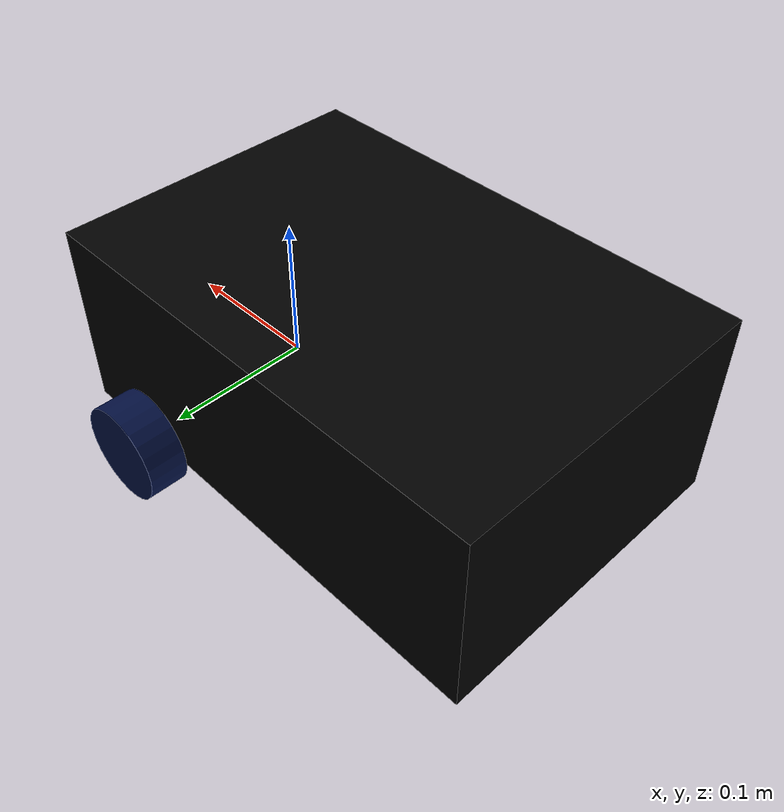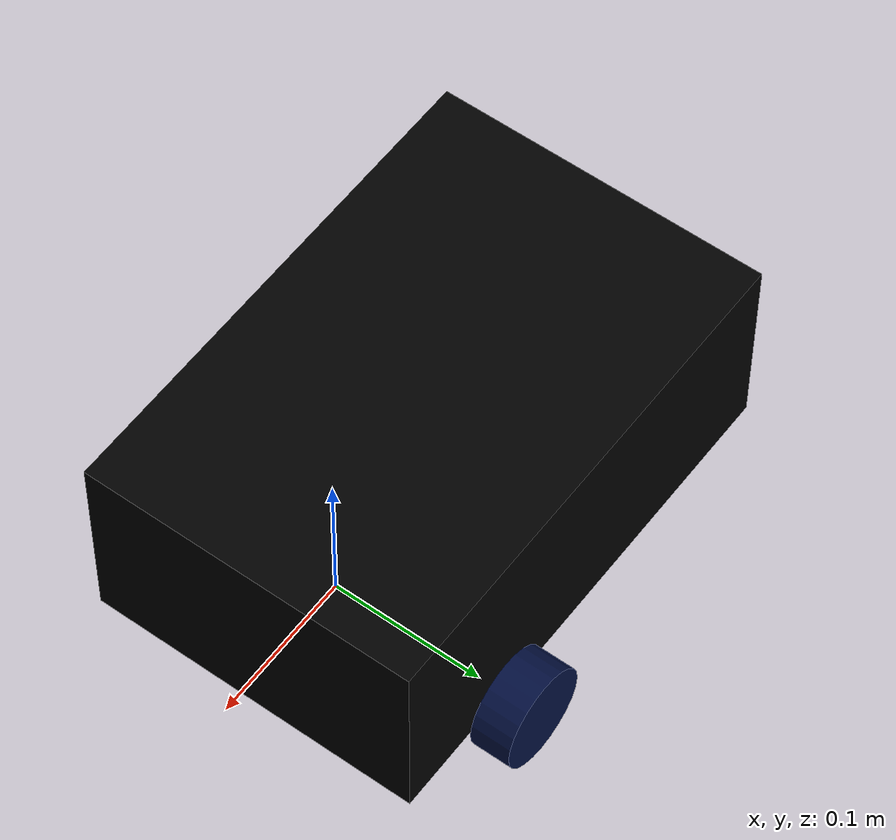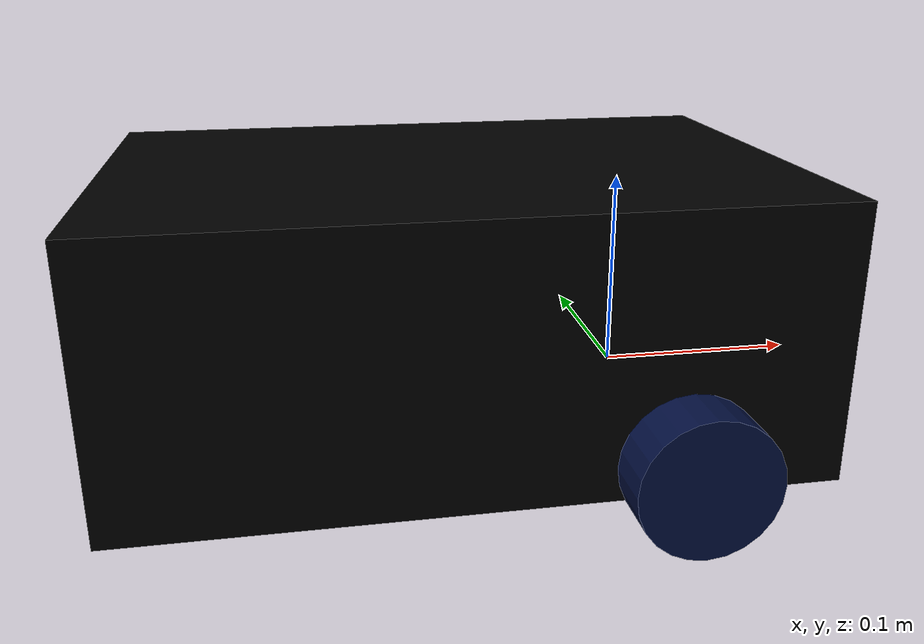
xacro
<?xml version="1.0"?>
<robot xmlns:xacro="http://www.ros.org/wiki/xacro">

    <xacro:include filename="inertial_macros.xacro"/>

    <xacro:property name="chassis_length" value="0.33"/>
    <xacro:property name="chassis_width" value="0.22"/>
    <xacro:property name="chassis_height" value="0.132"/>
    <xacro:property name="chassis_mass" value="1.0"/>
    <xacro:property name="wheel_radius" value="0.0325"/>
    <xacro:property name="wheel_thickness" value="0.026"/>
    <xacro:property name="wheel_mass" value="0.034"/>
    <xacro:property name="wheel_offset_x" value="${0.22 + wheel_radius}"/>
    <xacro:property name="wheel_offset_y" value="${chassis_width / 2 + wheel_thickness / 2 + 0.008}"/>
    <xacro:property name="wheel_offset_z" value="0.021"/>
    <xacro:property name="caster_wheel_radius" value="0.017"/>
    <xacro:property name="caster_wheel_mass" value="0.029"/>
    <xacro:property name="caster_wheel_offset_x" value="0.09"/>
    <xacro:property name="caster_wheel_offset_z" value="${wheel_offset_z - wheel_radius + caster_wheel_radius}"/>

    <material name="black">
        <color rgba="0 0 0 1"/>
    </material>
    <material name="blue">
        <color rgba="0.01 0.06 0.25 1"/>
    </material>

    <!-- BASE LINK -->

    <link name="base_link">
    </link>

    <!-- BASE_FOOTPRINT LINK -->

    <joint name="base_footprint_joint" type="fixed">
        <parent link="base_link"/>
        <child link="base_footprint"/>
        <origin xyz="0 0 0" rpy="0 0 0"/>
    </joint>

    <link name="base_footprint">
    </link>

    <!-- CHASSIS LINK -->

    <joint name="chassis_joint" type="fixed">
        <parent link="base_link"/>
        <child link="chassis"/>
        <origin xyz="${-wheel_offset_x} 0 ${-wheel_offset_z}"/>
    </joint>

    <link name="chassis">
        <visual>
            <origin xyz="${chassis_length/2} 0 ${chassis_height/2}"/>
            <geometry>
                <box size="${chassis_length} ${chassis_width} ${chassis_height}"/>
            </geometry>
            <material name="black"/>
        </visual>
        <collision>
            <origin xyz="${chassis_length/2} 0 ${chassis_height/2}"/>
            <geometry>
                <box size="${chassis_length} ${chassis_width} ${chassis_height}"/>
            </geometry>
        </collision>
        <xacro:inertial_box mass="${chassis_mass}" x="${chassis_length}" y="${chassis_width}" z="${chassis_height}">
            <origin xyz="${chassis_length/2} 0 ${chassis_height/2}" rpy="0 0 0"/>
        </xacro:inertial_box>
    </link>

    <gazebo reference="chassis">
        <material>Gazebo/Black</material>
    </gazebo>

    <!-- LEFT WHEEL LINK -->
    <joint name="left_wheel_joint" type="continuous">
        <parent link="base_link"/>
        <child link="left_wheel"/>
        <origin xyz="0 ${wheel_offset_y} 0" rpy="-${pi/2} 0 0"/>
        <axis xyz="0 0 1"/>
    </joint>

    <link name="left_wheel">
        <visual>
            <geometry>
                <cylinder radius="${wheel_radius}" length="${wheel_thickness}"/>
            </geometry>
            <material name="blue"/>
        </visual>
        <collision>
            <geometry>
                <sphere radius="${wheel_radius}"/>
            </geometry>
        </collision>
        <xacro:inertial_cylinder mass="${wheel_mass}" length="${wheel_thickness}" radius="${wheel_radius}">
            <origin xyz="0 0 0" rpy="0 0 0"/>
        </xacro:inertial_cylinder>
    </link>

    <gazebo reference="left_wheel">
        <material>Gazebo/Black</material>
    </gazebo>

    <!-- RIGHT WHEEL LINK -->
    <joint name="right_wheel_joint" type="continuous">
        <parent link="base_link"/>
        <child link="right_wheel"/>
        <origin xyz="0 -${wheel_offset_y} 0" rpy="${pi/2} 0 0"/>
        <axis xyz="0 0 -1"/>
    </joint>

    <link name="right_wheel">
        <visual>
            <geometry>
                <cylinder radius="${wheel_radius}" length="${wheel_thickness}"/>
            </geometry>
            <material name="blue"/>
        </visual>
        <collision>
            <geometry>
                <sphere radius="${wheel_radius}"/>
            </geometry>
        </collision>
        <xacro:inertial_cylinder mass="${wheel_mass}" length="${wheel_thickness}" radius="${wheel_radius}">
            <origin xyz="0 0 0" rpy="0 0 0"/>
        </xacro:inertial_cylinder>
    </link>

    <gazebo reference="right_wheel">
        <material>Gazebo/Black</material>
    </gazebo>

    <!-- CASTER WHEEL -->
    <joint name="caster_joint" type="fixed">
        <parent link="chassis"/>
        <child link="caster_wheel"/>
        <origin xyz="${caster_wheel_offset_x} 0 ${caster_wheel_offset_z}"/>
    </joint>

    <link name="caster_wheel">
        <visual>
            <geometry>
                <sphere radius="${caster_wheel_radius}"/>
            </geometry>
            <material name="black"/>
        </visual>
        <collision>
            <geometry>
                <sphere radius="${caster_wheel_radius}"/>
            </geometry>
        </collision>
        <xacro:inertial_sphere mass="${caster_wheel_mass}" radius="${caster_wheel_radius}">
            <origin xyz="0 0 0" rpy="0 0 0"/>
        </xacro:inertial_sphere>
    </link>

    <gazebo reference="caster_wheel">
        <material>Gazebo/Black</material>
        <mu1 value="0.001"/>  <!-- Coefficient of friction in the direction of relative motion -->
        <mu2 value="0.001"/>  <!-- Coefficient of friction perpendicular to the direction of relative motion -->
    </gazebo>

</robot>
